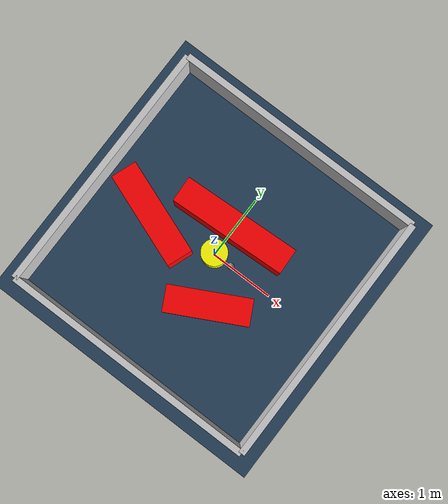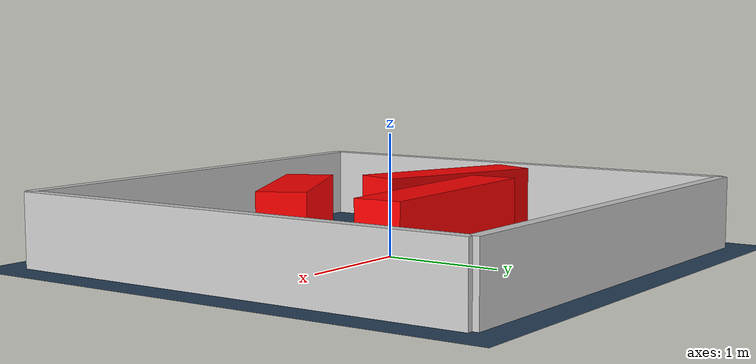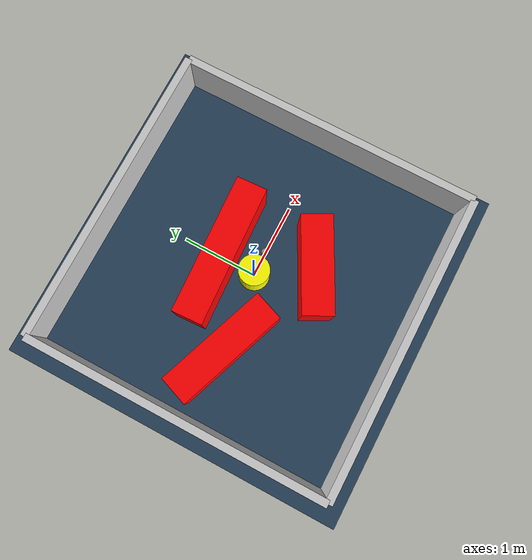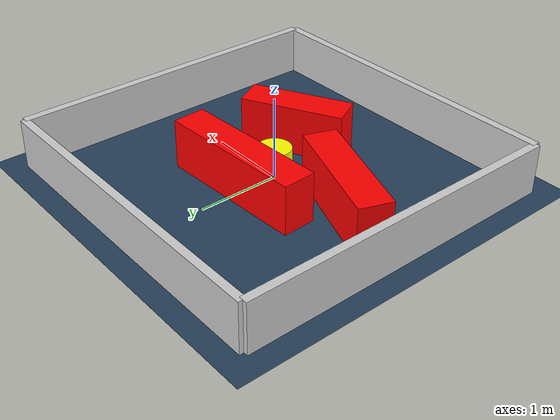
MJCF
<?xml version="1.0" ?>
<mujoco model="generated_environment">
  <option timestep="0.01" integrator="RK4" cone="elliptic"/>
  <default>
    <geom density="1"/>
  </default>
  <asset>
    <texture builtin="gradient" height="3072" rgb1="0.3 0.5 0.7" rgb2="0 0 0" type="skybox" width="512"/>
    <texture builtin="checker" height="300" mark="edge" markrgb="0.8 0.8 0.8" name="groundplane" rgb1="0.2 0.3 0.4" rgb2="0.1 0.2 0.3" type="2d" width="300"/>
    <material name="groundplane" reflectance="0.2" texrepeat="5 5" texture="groundplane" texuniform="true"/>
    <material name="robot" rgba="0.0 1.0 0.0 1"/>
  </asset>
  <worldbody>
    <light dir="0 0 -1" directional="true" pos="0 0 1.5"/>
    <geom condim="4" friction="1.0 0.005 0.001" material="groundplane" name="floor" size="0 0 0.05" type="plane"/>
    <body name="walls">
      <geom name="wall_1" condim="4" pos="-2.0 0.0 0.3" rgba="0.800000011920929 0.800000011920929 0.800000011920929 1.0" size="0.05 2.0 0.3" type="box"/>
      <geom name="wall_2" condim="4" pos="2.0 0.0 0.3" rgba="0.800000011920929 0.800000011920929 0.800000011920929 1.0" size="0.05 2.0 0.3" type="box"/>
      <geom name="wall_3" condim="4" pos="0.0 -2.0 0.3" rgba="0.800000011920929 0.800000011920929 0.800000011920929 1.0" size="2.0 0.05 0.3" type="box"/>
      <geom name="wall_4" condim="4" pos="0.0 2.0 0.3" rgba="0.800000011920929 0.800000011920929 0.800000011920929 1.0" size="2.0 0.05 0.3" type="box"/>
    </body>
    <body name="robot">
      <joint name="joint_x" type="slide" pos="0 0 0" axis="1 0 0"/>
      <joint name="joint_y" type="slide" pos="0 0 0" axis="0 1 0"/>
      <geom name="robot" type="sphere" pos="0.3 0.0 0.2" size="0.05" mass="5." friction="1.0 0.005 0.0001" condim="4" rgba="0.5 0.5 0.5 1.0"/>
      <site name="sensor_ball"/>
    </body>
    <body name="obstacle_movable_1">
      <geom name="obstacle_movable_1" condim="4" pos="0.0 0.0 0.2" euler="0 0 0.0" friction="1.0 0.005 0.001" rgba="1.0 1.0 0.0 1.0" size="0.2 0.2 0.0" type="cylinder" mass="0.1"/>
      <joint type="free"/>
    </body>
    <body name="obstacle_2_static">
      <geom name="obstacle_2_static" condim="4" pos="0.38847306302935447 -0.657645741488835 0.3" euler="0 0 27.561389167280105" friction="1.0 0.005 0.001" rgba="1 0 0 1" size="0.623693741526693 0.2 0.3" type="box"/>
    </body>
    <body name="obstacle_3_static">
      <geom name="obstacle_3_static" condim="4" pos="-0.0005620753590211969 0.46653958430292675 0.3" euler="0 0 2.7780307090193412" friction="1.0 0.005 0.001" rgba="1 0 0 1" size="0.9158499301686027 0.2 0.3" type="box"/>
    </body>
    <body name="obstacle_4_static">
      <geom name="obstacle_4_static" condim="4" pos="-1.0297240331248154 -0.11285738637218024 0.3" euler="0 0 159.75957521215994" friction="1.0 0.005 0.001" rgba="1 0 0 1" size="0.7486795782542153 0.2 0.3" type="box"/>
    </body>
  </worldbody>
  <actuator>
    <motor name="actuator_x" joint="joint_x" gear="1" ctrlrange="-1 1"/>
    <motor name="actuator_y" joint="joint_y" gear="1" ctrlrange="-1 1"/>
  </actuator>
</mujoco>
